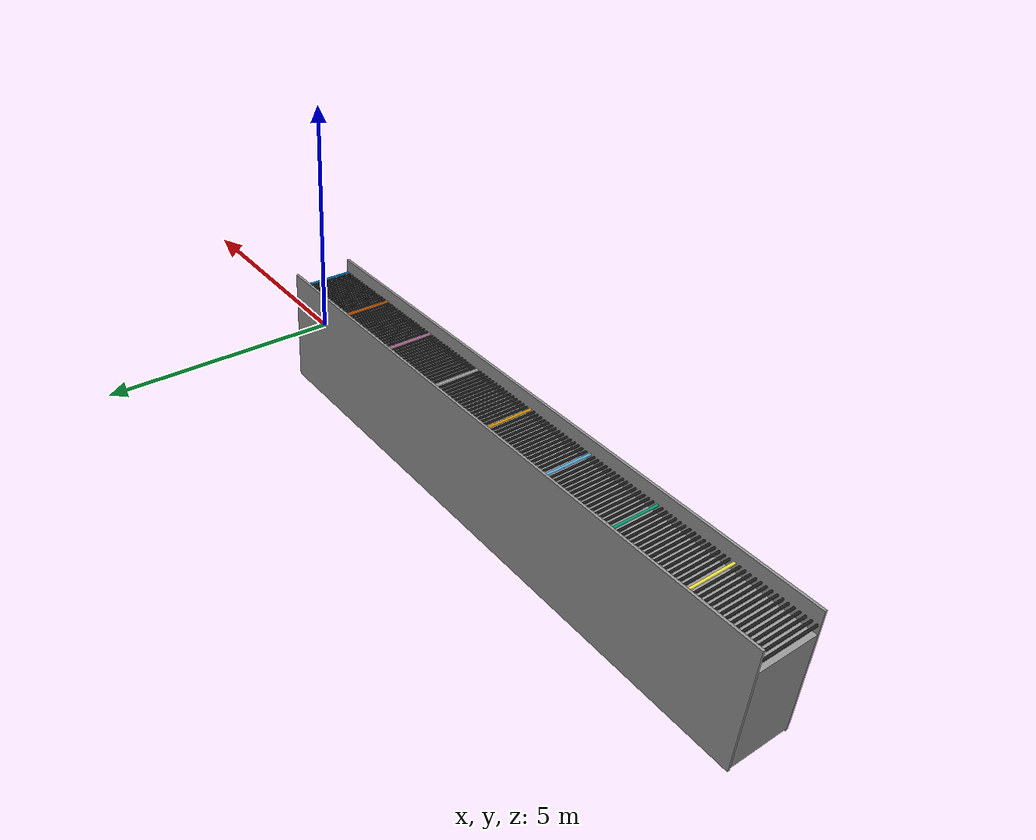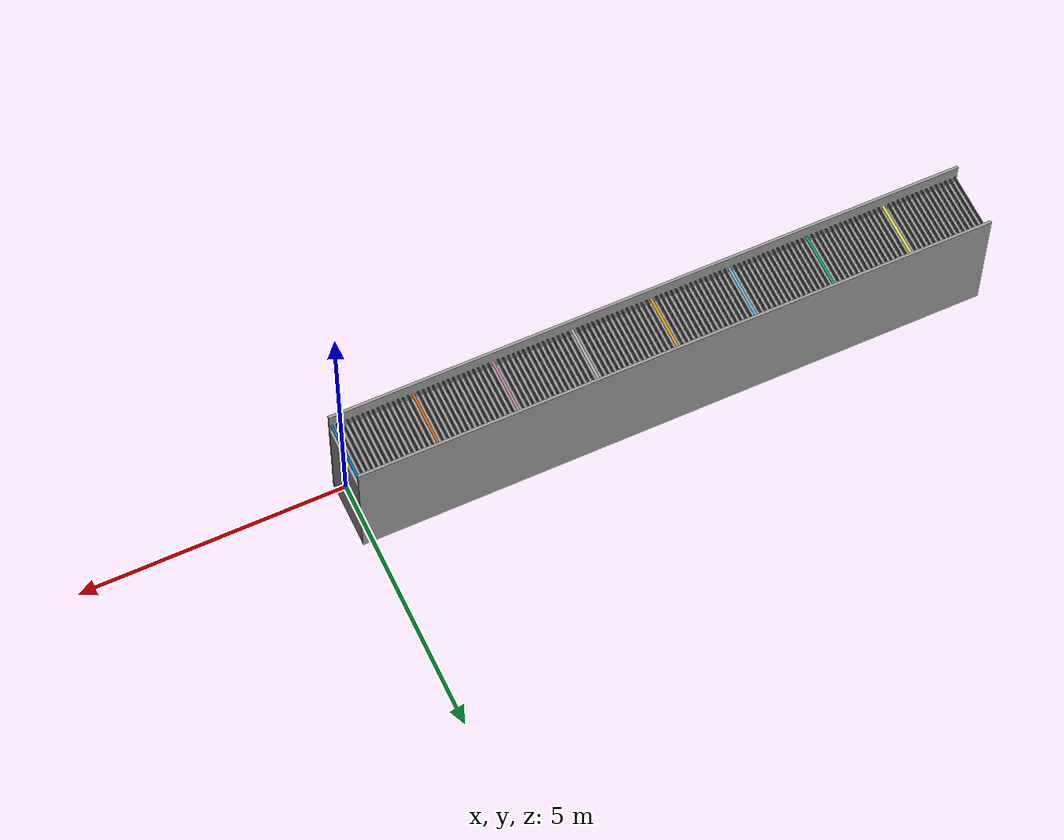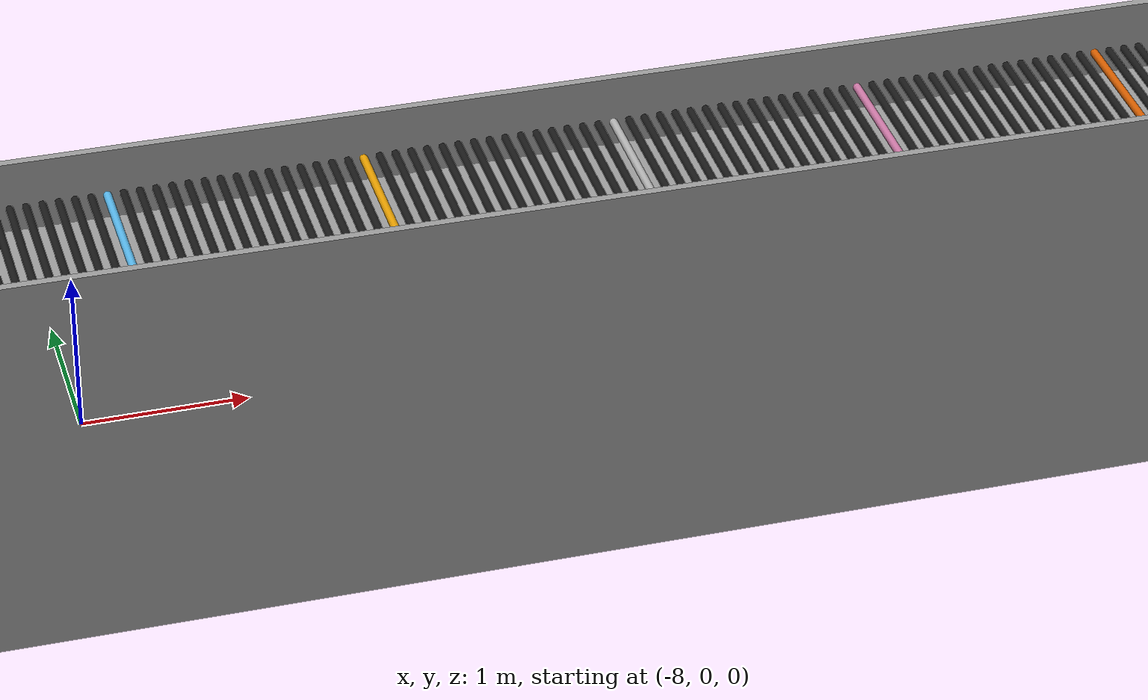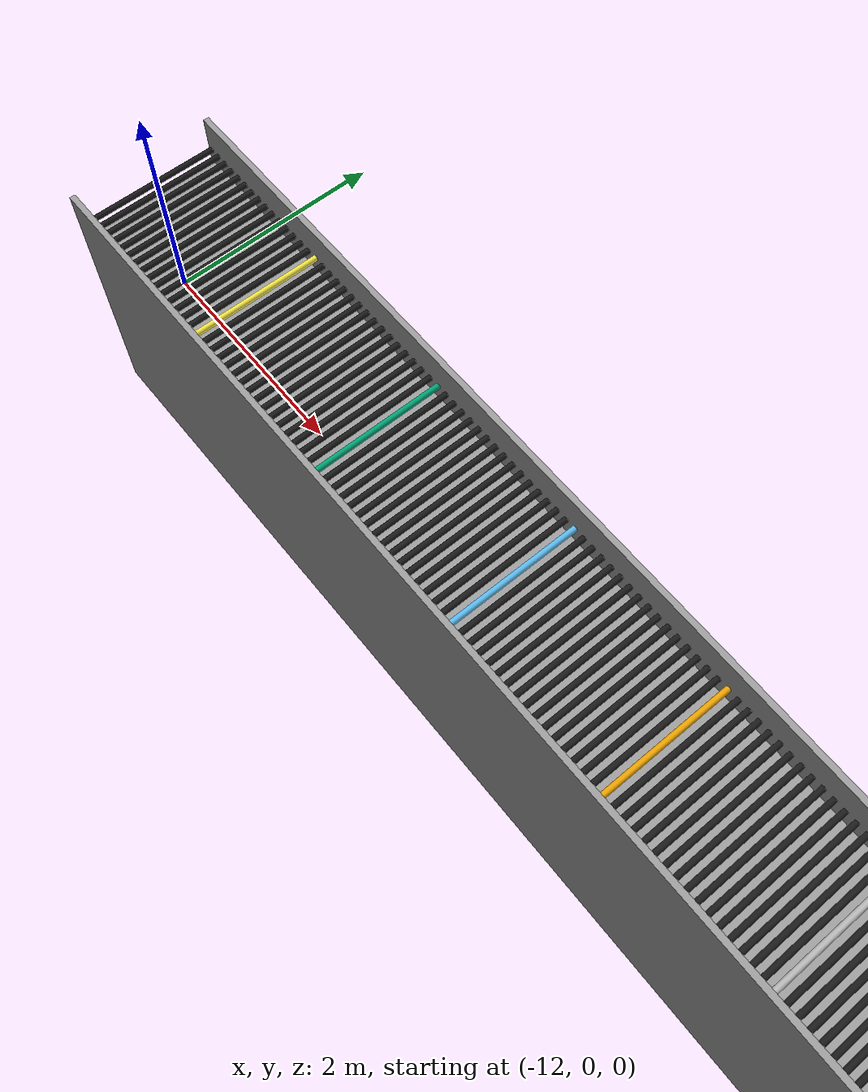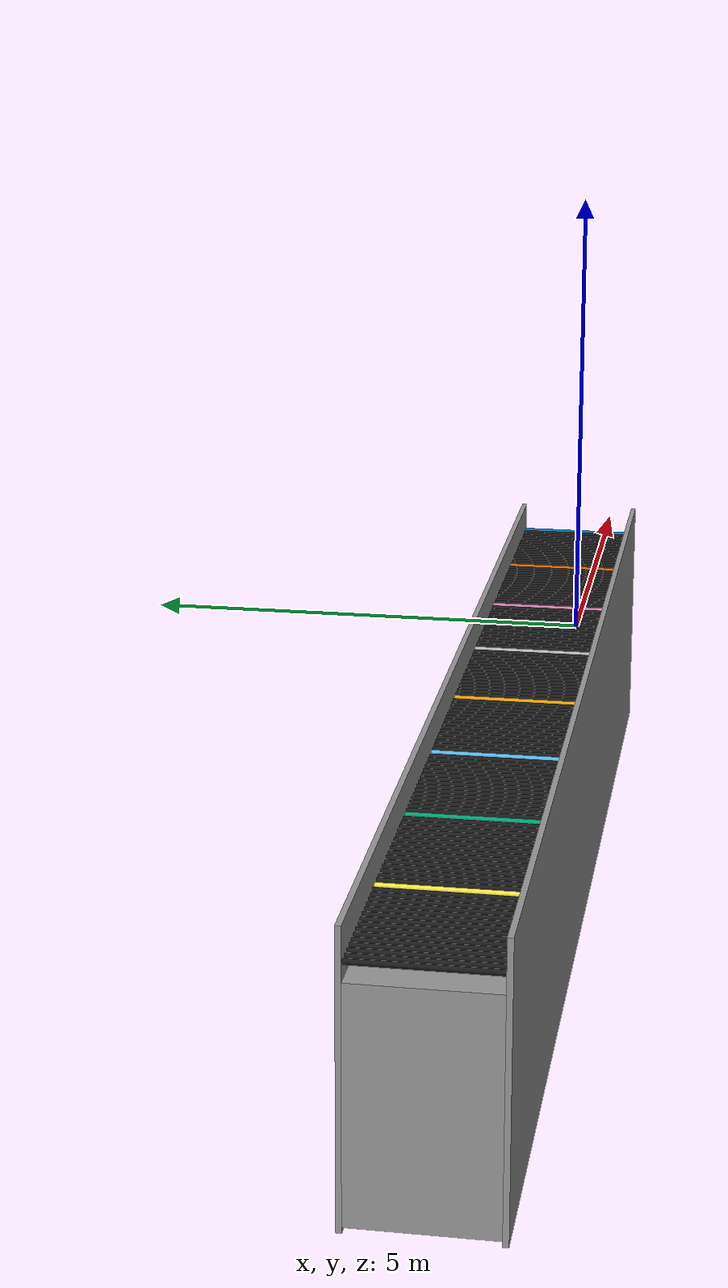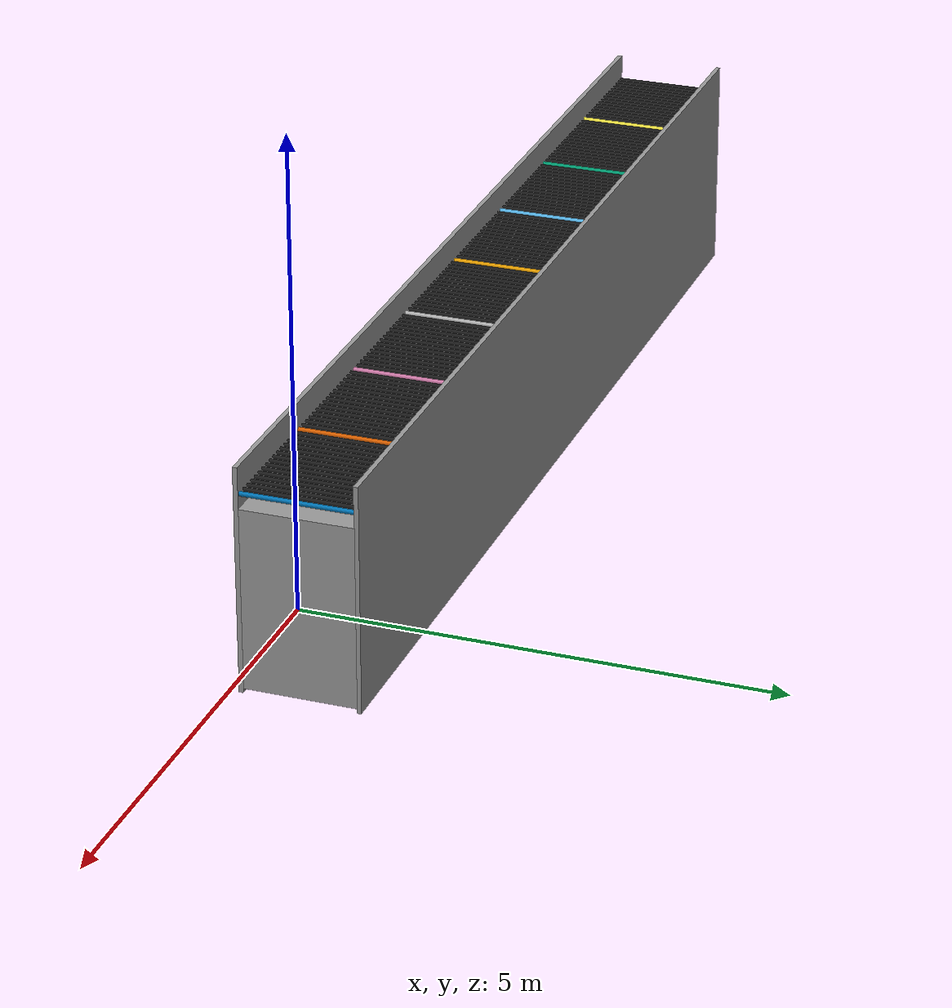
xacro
<?xml version="1.0" ?>
<robot name="roller_conveyor_40ft" xmlns:xacro="http://www.ros.org/wiki/xacro">

    <!-- Parameters -->
    <xacro:property name="roller_diameter" value="0.050"/> <!-- 50.8mm -->
    <xacro:property name="roller_length" value="1.219"/>   <!-- 4ft -->
    <xacro:property name="conveyor_length" value="12.192"/> <!-- 5ft -->
    <xacro:property name="conveyor_width" value="1.219"/>  <!-- 4ft -->
    <xacro:property name="roller_count" value="128"/>
    <xacro:property name="roller_pitch" value="0.09525"/>
    <xacro:property name="pi" value="3.1415926"/>
    <xacro:property name="roller_spacing" value="${conveyor_length / (roller_count)}"/>

    <link name="base_footprint"/>
    <joint name="base_link" type="fixed">
        <origin rpy="0 0 0" xyz="0 0 0"/>
        <parent link="base_footprint"/>
        <child link="base_link"/>
    </joint>
    <!-- Base Frame -->
    <link name="base_link">
        <visual>
            <origin xyz="-6.096 0 0" rpy="0 0 0" />
            <geometry>
                <box size="12.192 1.219 2.0"/>
            </geometry>
            <material name="gray">
                <color rgba="0.6 0.6 0.6 1.0"/>
            </material>
        </visual>
        <collision>
            <origin xyz="-6.096 0 0.0" rpy="0 0 0" />
            <geometry>
                <box size="12.192 1.219 2.0"/>
            </geometry>
        </collision>
        <inertial>
            <origin xyz="-6.096 0 1.0" rpy="0 0 0" />
            <mass value="20.0"/>
            <inertia ixx="0.2" iyy="0.2" izz="0.2"/>
        </inertial>
    </link>

    <!-- Left Guide Frame-->
    <link name="leftFrame">
        <visual>
            <origin xyz="-6.096 0 0.0" rpy="0 0 0" />
            <geometry>
                <box size="12.192 0.05 2.5"/>
            </geometry>
            <material name="gray">
                <color rgba="0.6 0.6 0.6 1.0"/>
            </material>
        </visual>
        <collision>
            <origin xyz="-6.096 0 0.0" rpy="0 0 0" />
            <geometry>
                <box size="12.192 0.05 2.5"/>
            </geometry>
        </collision>
        <inertial>
            <origin xyz="-6.096 0 0.0" rpy="0 0 0" />
            <mass value="20.0"/>
            <inertia ixx="0.2" iyy="0.2" izz="0.2"/>
        </inertial>
    </link>
    <joint name="leftFrameJoint" type="fixed">
        <parent link="base_link"/>
        <child link="leftFrame"/>
        <origin xyz="0 -0.63 0.2" rpy="0 0 0"/>
        <axis xyz="0 0 1"/>
    </joint>

    <!-- Right Guide Frame-->
    <link name="rightFrame">
        <visual>
            <origin xyz="-6.096 0 0" rpy="0 0 0" />
            <geometry>
                <box size="12.192 0.05 2.5"/>
            </geometry>
            <material name="gray">
                <color rgba="0.6 0.6 0.6 1.0"/>
            </material>
        </visual>
        <collision>
            <origin xyz="-6.096 0 0" rpy="0 0 0" />
            <geometry>
                <box size="12.192 0.05 2.5"/>
            </geometry>
        </collision>
        <inertial>
            <origin xyz="-6.096 0 0" rpy="0 0 0" />
            <mass value="20.0"/>
            <inertia ixx="0.2" iyy="0.2" izz="0.2"/>
        </inertial>
    </link>
    <joint name="rightFrameJoint" type="fixed">
        <parent link="base_link"/>
        <child link="rightFrame"/>
        <origin xyz="0 0.63 0.2" rpy="0 0 0"/>
        <axis xyz="0 0 1"/>
    </joint>

    <!-- Start Roller Definitions -->
    <!-- In between rollers, starting from #1->#32 -->
    <!-- Roller 1 -->
    <link name="Roller_1"><visual><geometry><cylinder radius="0.025" length="1.219"/></geometry></visual>
        <visual>
            <geometry>
                <cylinder radius="0.025" length="1.219"/>
            </geometry>
            <material name="black">
                <color rgba="0.1 0.1 0.1 1.0"/>
            </material>
        </visual>
        <collision>
            <geometry>
                <cylinder radius="0.025" length="1.219"/>
            </geometry>
        </collision>
        <inertial>
            <mass value="2.0"/>
            <inertia ixx="0.02" iyy="0.02" izz="0.02"/>
        </inertial>
    </link>

    <joint name="Roller_1_1_joint" type="continuous">
        <parent link="base_link"/>
        <child link="Roller_1"/>
        <origin xyz="-${roller_pitch/2} 0 1.15" rpy="1.570796 0 0"/>
        <axis xyz="0 0 1"/>
        <dynamics damping="1.0" friction="0.0"/>
    </joint>

    <!-- Roller #2->#16 -->
    <xacro:macro name="roller1st5ft" params="rollerNum">
        <link name="Roller_${rollerNum}">
            <visual>
                <geometry>
                    <cylinder radius="0.025" length="1.219"/>
                </geometry>
                <material name="black">
                    <color rgba="0.1 0.1 0.1 1.0"/>
                </material>
            </visual>
            <collision>
                <geometry>
                    <cylinder radius="0.025" length="1.219"/>
                </geometry>
            </collision>
            <inertial>
                <mass value="2.0"/>
                <inertia ixx="0.02" iyy="0.02" izz="0.02"/>
            </inertial>
        </link>

        <joint name="Roller_1_${rollerNum}_joint" type="continuous">
            <parent link="base_link"/>
            <child link="Roller_${rollerNum}"/>
            <origin xyz="-${(rollerNum-1)*roller_pitch + roller_pitch/2} 0 1.15" rpy="${pi/2} 0 0"/>
            <axis xyz="0 0 1"/>
            <dynamics damping="1.0" friction="0.0"/>
        </joint>
    </xacro:macro>

    <!-- Roller 17 -->
    <link name="Roller_17"><visual><geometry><cylinder radius="0.025" length="1.219"/></geometry></visual>
        <visual>
            <geometry>
                <cylinder radius="0.025" length="1.219"/>
            </geometry>
            <material name="black">
                <color rgba="0.1 0.1 0.1 1.0"/>
            </material>
        </visual>
        <collision>
            <geometry>
                <cylinder radius="0.025" length="1.219"/>
            </geometry>
        </collision>
        <inertial>
            <mass value="2.0"/>
            <inertia ixx="0.02" iyy="0.02" izz="0.02"/>
        </inertial>
    </link>

    <joint name="Roller_17_17_joint" type="continuous">
        <parent link="base_link"/>
        <child link="Roller_17"/>
        <origin xyz="-${(17-1)*roller_pitch + roller_pitch/2} 0 1.15" rpy="1.570796 0 0"/>
        <axis xyz="0 0 1"/>
        <dynamics damping="1.0" friction="0.0"/>
    </joint>

    <!-- Roller #18->#32 -->
    <xacro:macro name="roller2nd5ft" params="rollerNum">
        <link name="Roller_${rollerNum}">
            <visual>
                <geometry>
                    <cylinder radius="0.025" length="1.219"/>
                </geometry>
                <material name="black">
                    <color rgba="0.1 0.1 0.1 1.0"/>
                </material>
            </visual>
            <collision>
                <geometry>
                    <cylinder radius="0.025" length="1.219"/>
                </geometry>
            </collision>
            <inertial>
                <mass value="2.0"/>
                <inertia ixx="0.02" iyy="0.02" izz="0.02"/>
            </inertial>
        </link>

        <joint name="Roller_17_${rollerNum}_joint" type="continuous">
            <parent link="base_link"/>
            <child link="Roller_${rollerNum}"/>
            <origin xyz="-${(rollerNum-1)*roller_pitch + roller_pitch/2} 0 1.15" rpy="${pi/2} 0 0"/>
            <axis xyz="0 0 1"/>
            <dynamics damping="1.0" friction="0.0"/>
        </joint>
    </xacro:macro>

    <!-- In between rollers, starting from #33->#64 -->
    <!-- Roller #33 -->
    <link name="Roller_33"><visual><geometry><cylinder radius="0.025" length="1.219"/></geometry></visual>
        <visual>
            <geometry>
                <cylinder radius="0.025" length="1.219"/>
            </geometry>
            <material name="black">
                <color rgba="0.1 0.1 0.1 1.0"/>
            </material>
        </visual>
        <collision>
            <geometry>
                <cylinder radius="0.025" length="1.219"/>
            </geometry>
        </collision>
        <inertial>
            <mass value="2.0"/>
            <inertia ixx="0.02" iyy="0.02" izz="0.02"/>
        </inertial>
    </link>

    <joint name="Roller_33_33_joint" type="continuous">
        <parent link="base_link"/>
        <child link="Roller_33"/>
        <origin xyz="-${(32)*roller_pitch + roller_pitch/2} 0 1.15" rpy="1.570796 0 0"/>
        <axis xyz="0 0 1"/>
        <dynamics damping="1.0" friction="0.0"/>
    </joint>

    <!-- Roller #34->#48 -->
    <xacro:macro name="roller3rd5ft" params="rollerNum">
        <link name="Roller_${rollerNum}">
            <visual>
                <geometry>
                    <cylinder radius="0.025" length="1.219"/>
                </geometry>
                <material name="black">
                    <color rgba="0.1 0.1 0.1 1.0"/>
                </material>
            </visual>
            <collision>
                <geometry>
                    <cylinder radius="0.025" length="1.219"/>
                </geometry>
            </collision>
            <inertial>
                <mass value="2.0"/>
                <inertia ixx="0.02" iyy="0.02" izz="0.02"/>
            </inertial>
        </link>

        <joint name="Roller_33_${rollerNum}_joint" type="continuous">
            <parent link="base_link"/>
            <child link="Roller_${rollerNum}"/>
            <origin xyz="-${(rollerNum-1)*roller_pitch + roller_pitch/2} 0 1.15" rpy="${pi/2} 0 0"/>
            <axis xyz="0 0 1"/>
            <dynamics damping="1.0" friction="0.0"/>
        </joint>
    </xacro:macro>

    <!-- Roller 49 -->
    <link name="Roller_49"><visual><geometry><cylinder radius="0.025" length="1.219"/></geometry></visual>
        <visual>
            <geometry>
                <cylinder radius="0.025" length="1.219"/>
            </geometry>
            <material name="black">
                <color rgba="0.1 0.1 0.1 1.0"/>
            </material>
        </visual>
        <collision>
            <geometry>
                <cylinder radius="0.025" length="1.219"/>
            </geometry>
        </collision>
        <inertial>
            <mass value="2.0"/>
            <inertia ixx="0.02" iyy="0.02" izz="0.02"/>
        </inertial>
    </link>

    <joint name="Roller_49_49_joint" type="continuous">
        <parent link="base_link"/>
        <child link="Roller_49"/>
        <origin xyz="-${(49-1)*roller_pitch + roller_pitch/2} 0 1.15" rpy="1.570796 0 0"/>
        <axis xyz="0 0 1"/>
        <dynamics damping="1.0" friction="0.0"/>
    </joint>

    <!-- Roller #50->#64 -->
    <xacro:macro name="roller4th5ft" params="rollerNum">
        <link name="Roller_${rollerNum}">
            <visual>
                <geometry>
                    <cylinder radius="0.025" length="1.219"/>
                </geometry>
                <material name="black">
                    <color rgba="0.1 0.1 0.1 1.0"/>
                </material>
            </visual>
            <collision>
                <geometry>
                    <cylinder radius="0.025" length="1.219"/>
                </geometry>
            </collision>
            <inertial>
                <mass value="2.0"/>
                <inertia ixx="0.02" iyy="0.02" izz="0.02"/>
            </inertial>
        </link>

        <joint name="Roller_49_${rollerNum}_joint" type="continuous">
            <parent link="base_link"/>
            <child link="Roller_${rollerNum}"/>
            <origin xyz="-${(rollerNum-1)*roller_pitch + roller_pitch/2} 0 1.15" rpy="${pi/2} 0 0"/>
            <axis xyz="0 0 1"/>
            <dynamics damping="1.0" friction="0.0"/>
        </joint>
    </xacro:macro>

    <!-- In between rollders, starting from #65->#80 -->
    <!-- Roller #65 -->
    <link name="Roller_65"><visual><geometry><cylinder radius="0.025" length="1.219"/></geometry></visual>
        <visual>
            <geometry>
                <cylinder radius="0.025" length="1.219"/>
            </geometry>
            <material name="black">
                <color rgba="0.1 0.1 0.1 1.0"/>
            </material>
        </visual>
        <collision>
            <geometry>
                <cylinder radius="0.025" length="1.219"/>
            </geometry>
        </collision>
        <inertial>
            <mass value="2.0"/>
            <inertia ixx="0.02" iyy="0.02" izz="0.02"/>
        </inertial>
    </link>

    <joint name="Roller_65_65_joint" type="continuous">
        <parent link="base_link"/>
        <child link="Roller_65"/>
        <origin xyz="-${(64)*roller_pitch + roller_pitch/2} 0 1.15" rpy="1.570796 0 0"/>
        <axis xyz="0 0 1"/>
        <dynamics damping="1.0" friction="0.0"/>
    </joint>

    <!-- Roller #66->#80 -->
    <xacro:macro name="roller5th5ft" params="rollerNum">
        <link name="Roller_${rollerNum}">
            <visual>
                <geometry>
                    <cylinder radius="0.025" length="1.219"/>
                </geometry>
                <material name="black">
                    <color rgba="0.1 0.1 0.1 1.0"/>
                </material>
            </visual>
            <collision>
                <geometry>
                    <cylinder radius="0.025" length="1.219"/>
                </geometry>
            </collision>
            <inertial>
                <mass value="2.0"/>
                <inertia ixx="0.02" iyy="0.02" izz="0.02"/>
            </inertial>
        </link>

        <joint name="Roller_65_${rollerNum}_joint" type="continuous">
            <parent link="base_link"/>
            <child link="Roller_${rollerNum}"/>
            <origin xyz="-${(rollerNum-1)*roller_pitch + roller_pitch/2} 0 1.15" rpy="${pi/2} 0 0"/>
            <axis xyz="0 0 1"/>
            <dynamics damping="1.0" friction="0.0"/>
        </joint>
    </xacro:macro>

    <!-- Roller 81 -->
    <link name="Roller_81"><visual><geometry><cylinder radius="0.025" length="1.219"/></geometry></visual>
        <visual>
            <geometry>
                <cylinder radius="0.025" length="1.219"/>
            </geometry>
            <material name="black">
                <color rgba="0.1 0.1 0.1 1.0"/>
            </material>
        </visual>
        <collision>
            <geometry>
                <cylinder radius="0.025" length="1.219"/>
            </geometry>
        </collision>
        <inertial>
            <mass value="2.0"/>
            <inertia ixx="0.02" iyy="0.02" izz="0.02"/>
        </inertial>
    </link>

    <joint name="Roller_81_81_joint" type="continuous">
        <parent link="base_link"/>
        <child link="Roller_81"/>
        <origin xyz="-${(81-1)*roller_pitch + roller_pitch/2} 0 1.15" rpy="1.570796 0 0"/>
        <axis xyz="0 0 1"/>
        <dynamics damping="1.0" friction="0.0"/>
    </joint>

    <!-- Roller #82->#96 -->
    <xacro:macro name="roller6th5ft" params="rollerNum">
        <link name="Roller_${rollerNum}">
            <visual>
                <geometry>
                    <cylinder radius="0.025" length="1.219"/>
                </geometry>
                <material name="black">
                    <color rgba="0.1 0.1 0.1 1.0"/>
                </material>
            </visual>
            <collision>
                <geometry>
                    <cylinder radius="0.025" length="1.219"/>
                </geometry>
            </collision>
            <inertial>
                <mass value="2.0"/>
                <inertia ixx="0.02" iyy="0.02" izz="0.02"/>
            </inertial>
        </link>

        <joint name="Roller_81_${rollerNum}_joint" type="continuous">
            <parent link="base_link"/>
            <child link="Roller_${rollerNum}"/>
            <origin xyz="-${(rollerNum-1)*roller_pitch + roller_pitch/2} 0 1.15" rpy="${pi/2} 0 0"/>
            <axis xyz="0 0 1"/>
            <dynamics damping="1.0" friction="0.0"/>
        </joint>
    </xacro:macro>

    <!-- In between rollders, starting from #97->#112 -->
    <!-- Roller #97 -->
    <link name="Roller_97"><visual><geometry><cylinder radius="0.025" length="1.219"/></geometry></visual>
        <visual>
            <geometry>
                <cylinder radius="0.025" length="1.219"/>
            </geometry>
            <material name="black">
                <color rgba="0.1 0.1 0.1 1.0"/>
            </material>
        </visual>
        <collision>
            <geometry>
                <cylinder radius="0.025" length="1.219"/>
            </geometry>
        </collision>
        <inertial>
            <mass value="2.0"/>
            <inertia ixx="0.02" iyy="0.02" izz="0.02"/>
        </inertial>
    </link>

    <joint name="Roller_97_97_joint" type="continuous">
        <parent link="base_link"/>
        <child link="Roller_97"/>
        <origin xyz="-${(96)*roller_pitch + roller_pitch/2} 0 1.15" rpy="1.570796 0 0"/>
        <axis xyz="0 0 1"/>
        <dynamics damping="1.0" friction="0.0"/>
    </joint>

    <!-- Roller #98->#128 -->
    <xacro:macro name="roller7th5ft" params="rollerNum">
        <link name="Roller_${rollerNum}">
            <visual>
                <geometry>
                    <cylinder radius="0.025" length="1.219"/>
                </geometry>
                <material name="black">
                    <color rgba="0.1 0.1 0.1 1.0"/>
                </material>
            </visual>
            <collision>
                <geometry>
                    <cylinder radius="0.025" length="1.219"/>
                </geometry>
            </collision>
            <inertial>
                <mass value="2.0"/>
                <inertia ixx="0.02" iyy="0.02" izz="0.02"/>
            </inertial>
        </link>

        <joint name="Roller_97_${rollerNum}_joint" type="continuous">
            <parent link="base_link"/>
            <child link="Roller_${rollerNum}"/>
            <origin xyz="-${(rollerNum-1)*roller_pitch + roller_pitch/2} 0 1.15" rpy="${pi/2} 0 0"/>
            <axis xyz="0 0 1"/>
            <dynamics damping="1.0" friction="0.0"/>
        </joint>
    </xacro:macro>

    <!-- Roller 113 -->
    <link name="Roller_113"><visual><geometry><cylinder radius="0.025" length="1.219"/></geometry></visual>
        <visual>
            <geometry>
                <cylinder radius="0.025" length="1.219"/>
            </geometry>
            <material name="black">
                <color rgba="0.1 0.1 0.1 1.0"/>
            </material>
        </visual>
        <collision>
            <geometry>
                <cylinder radius="0.025" length="1.219"/>
            </geometry>
        </collision>
        <inertial>
            <mass value="2.0"/>
            <inertia ixx="0.02" iyy="0.02" izz="0.02"/>
        </inertial>
    </link>

    <joint name="Roller_113_113_joint" type="continuous">
        <parent link="base_link"/>
        <child link="Roller_113"/>
        <origin xyz="-${(113-1)*roller_pitch + roller_pitch/2} 0 1.15" rpy="1.570796 0 0"/>
        <axis xyz="0 0 1"/>
        <dynamics damping="1.0" friction="0.0"/>
    </joint>

    <!-- Roller #114->#128 -->
    <xacro:macro name="roller8th5ft" params="rollerNum">
        <link name="Roller_${rollerNum}">
            <visual>
                <geometry>
                    <cylinder radius="0.025" length="1.219"/>
                </geometry>
                <material name="black">
                    <color rgba="0.1 0.1 0.1 1.0"/>
                </material>
            </visual>
            <collision>
                <geometry>
                    <cylinder radius="0.025" length="1.219"/>
                </geometry>
            </collision>
            <inertial>
                <mass value="2.0"/>
                <inertia ixx="0.02" iyy="0.02" izz="0.02"/>
            </inertial>
        </link>

        <joint name="Roller_113_${rollerNum}_joint" type="continuous">
            <parent link="base_link"/>
            <child link="Roller_${rollerNum}"/>
            <origin xyz="-${(rollerNum-1)*roller_pitch + roller_pitch/2} 0 1.15" rpy="${pi/2} 0 0"/>
            <axis xyz="0 0 1"/>
            <dynamics damping="1.0" friction="0.0"/>
        </joint>
    </xacro:macro>

    <!-- Instantiate Rollers -->
    <!-- First 5ft #1 -> #16-->
    <xacro:roller1st5ft rollerNum="2"/>
    <xacro:roller1st5ft rollerNum="3"/>
    <xacro:roller1st5ft rollerNum="4"/>
    <xacro:roller1st5ft rollerNum="5"/>
    <xacro:roller1st5ft rollerNum="6"/>
    <xacro:roller1st5ft rollerNum="7"/>
    <xacro:roller1st5ft rollerNum="8"/>
    <xacro:roller1st5ft rollerNum="9"/>
    <xacro:roller1st5ft rollerNum="10"/>
    <xacro:roller1st5ft rollerNum="11"/>
    <xacro:roller1st5ft rollerNum="12"/>
    <xacro:roller1st5ft rollerNum="13"/>
    <xacro:roller1st5ft rollerNum="14"/>
    <xacro:roller1st5ft rollerNum="15"/>
    <xacro:roller1st5ft rollerNum="16"/>

    <!-- Second 5ft #17 -> #32-->
    <xacro:roller2nd5ft rollerNum="18"/>
    <xacro:roller2nd5ft rollerNum="19"/>
    <xacro:roller2nd5ft rollerNum="20"/>
    <xacro:roller2nd5ft rollerNum="21"/>
    <xacro:roller2nd5ft rollerNum="22"/>
    <xacro:roller2nd5ft rollerNum="23"/>
    <xacro:roller2nd5ft rollerNum="24"/>
    <xacro:roller2nd5ft rollerNum="25"/>
    <xacro:roller2nd5ft rollerNum="26"/>
    <xacro:roller2nd5ft rollerNum="27"/>
    <xacro:roller2nd5ft rollerNum="28"/>
    <xacro:roller2nd5ft rollerNum="29"/>
    <xacro:roller2nd5ft rollerNum="30"/>
    <xacro:roller2nd5ft rollerNum="31"/>
    <xacro:roller2nd5ft rollerNum="32"/>

    <!-- Third 5ft #33 -> #48-->
    <xacro:roller3rd5ft rollerNum="34"/>
    <xacro:roller3rd5ft rollerNum="35"/>
    <xacro:roller3rd5ft rollerNum="36"/>
    <xacro:roller3rd5ft rollerNum="37"/>
    <xacro:roller3rd5ft rollerNum="38"/>
    <xacro:roller3rd5ft rollerNum="39"/>
    <xacro:roller3rd5ft rollerNum="40"/>
    <xacro:roller3rd5ft rollerNum="41"/>
    <xacro:roller3rd5ft rollerNum="42"/>
    <xacro:roller3rd5ft rollerNum="43"/>
    <xacro:roller3rd5ft rollerNum="44"/>
    <xacro:roller3rd5ft rollerNum="45"/>
    <xacro:roller3rd5ft rollerNum="46"/>
    <xacro:roller3rd5ft rollerNum="47"/>
    <xacro:roller3rd5ft rollerNum="48"/>

    <!-- Fourth 5ft #49 -> #64-->
    <xacro:roller4th5ft rollerNum="50"/>
    <xacro:roller4th5ft rollerNum="51"/>
    <xacro:roller4th5ft rollerNum="52"/>
    <xacro:roller4th5ft rollerNum="53"/>
    <xacro:roller4th5ft rollerNum="54"/>
    <xacro:roller4th5ft rollerNum="55"/>
    <xacro:roller4th5ft rollerNum="56"/>
    <xacro:roller4th5ft rollerNum="57"/>
    <xacro:roller4th5ft rollerNum="58"/>
    <xacro:roller4th5ft rollerNum="59"/>
    <xacro:roller4th5ft rollerNum="60"/>
    <xacro:roller4th5ft rollerNum="61"/>
    <xacro:roller4th5ft rollerNum="62"/>
    <xacro:roller4th5ft rollerNum="63"/>
    <xacro:roller4th5ft rollerNum="64"/>

    <!-- Fifth 5ft #65 -> #80-->
    <xacro:roller5th5ft rollerNum="66"/>
    <xacro:roller5th5ft rollerNum="67"/>
    <xacro:roller5th5ft rollerNum="68"/>
    <xacro:roller5th5ft rollerNum="69"/>
    <xacro:roller5th5ft rollerNum="70"/>
    <xacro:roller5th5ft rollerNum="71"/>
    <xacro:roller5th5ft rollerNum="72"/>
    <xacro:roller5th5ft rollerNum="73"/>
    <xacro:roller5th5ft rollerNum="74"/>
    <xacro:roller5th5ft rollerNum="75"/>
    <xacro:roller5th5ft rollerNum="76"/>
    <xacro:roller5th5ft rollerNum="77"/>
    <xacro:roller5th5ft rollerNum="78"/>
    <xacro:roller5th5ft rollerNum="79"/>
    <xacro:roller5th5ft rollerNum="80"/>

    <!-- Sixth 5ft #81 -> #96-->
    <xacro:roller6th5ft rollerNum="82"/>
    <xacro:roller6th5ft rollerNum="83"/>
    <xacro:roller6th5ft rollerNum="84"/>
    <xacro:roller6th5ft rollerNum="85"/>
    <xacro:roller6th5ft rollerNum="86"/>
    <xacro:roller6th5ft rollerNum="87"/>
    <xacro:roller6th5ft rollerNum="88"/>
    <xacro:roller6th5ft rollerNum="89"/>
    <xacro:roller6th5ft rollerNum="90"/>
    <xacro:roller6th5ft rollerNum="91"/>
    <xacro:roller6th5ft rollerNum="92"/>
    <xacro:roller6th5ft rollerNum="93"/>
    <xacro:roller6th5ft rollerNum="94"/>
    <xacro:roller6th5ft rollerNum="95"/>
    <xacro:roller6th5ft rollerNum="96"/>

    <!-- Seventh 5ft #97 -> #112-->
    <xacro:roller7th5ft rollerNum="98"/>
    <xacro:roller7th5ft rollerNum="99"/>
    <xacro:roller7th5ft rollerNum="100"/>
    <xacro:roller7th5ft rollerNum="101"/>
    <xacro:roller7th5ft rollerNum="102"/>
    <xacro:roller7th5ft rollerNum="103"/>
    <xacro:roller7th5ft rollerNum="104"/>
    <xacro:roller7th5ft rollerNum="105"/>
    <xacro:roller7th5ft rollerNum="106"/>
    <xacro:roller7th5ft rollerNum="107"/>
    <xacro:roller7th5ft rollerNum="108"/>
    <xacro:roller7th5ft rollerNum="109"/>
    <xacro:roller7th5ft rollerNum="110"/>
    <xacro:roller7th5ft rollerNum="111"/>
    <xacro:roller7th5ft rollerNum="112"/>

    <!-- Seventh 5ft #113 -> #128-->
    <xacro:roller8th5ft rollerNum="114"/>
    <xacro:roller8th5ft rollerNum="115"/>
    <xacro:roller8th5ft rollerNum="116"/>
    <xacro:roller8th5ft rollerNum="117"/>
    <xacro:roller8th5ft rollerNum="118"/>
    <xacro:roller8th5ft rollerNum="119"/>
    <xacro:roller8th5ft rollerNum="120"/>
    <xacro:roller8th5ft rollerNum="121"/>
    <xacro:roller8th5ft rollerNum="122"/>
    <xacro:roller8th5ft rollerNum="123"/>
    <xacro:roller8th5ft rollerNum="124"/>
    <xacro:roller8th5ft rollerNum="125"/>
    <xacro:roller8th5ft rollerNum="126"/>
    <xacro:roller8th5ft rollerNum="127"/>
    <xacro:roller8th5ft rollerNum="128"/>

</robot>
